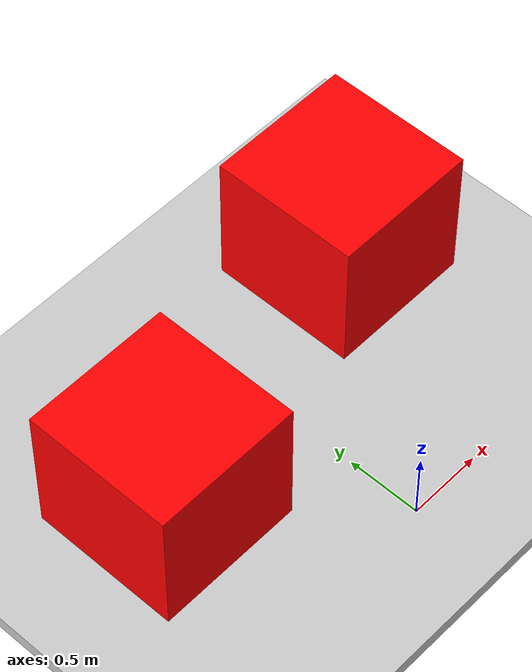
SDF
<?xml version="1.0" ?>
<!--
SPDX-FileCopyrightText: Alliander N. V.

SPDX-License-Identifier: Apache-2.0
-->
<!-- from https://github.com/gazebosim/gz-sim/blob/e647570f25f962d63af75cf669ff72731d57bd5e/examples/worlds/thermal_camera.sdf -->

<!--
  Demo world consisting of a thermal camera sensor and several models with
  different temperatures specified via the thermal system plugin.
-->

<sdf version="1.6">
  <world name="thermal_camera">
    <physics name="1ms" type="ignored">
      <max_step_size>0.001</max_step_size>
      <real_time_factor>1.0</real_time_factor>
    </physics>
    <plugin
      filename="ignition-gazebo-physics-system"
      name="ignition::gazebo::systems::Physics">
    </plugin>
    <plugin
      filename="ignition-gazebo-sensors-system"
      name="ignition::gazebo::systems::Sensors">
      <render_engine>ogre2</render_engine>
    </plugin>
    <plugin
      filename="ignition-gazebo-scene-broadcaster-system"
      name="ignition::gazebo::systems::SceneBroadcaster">
    </plugin>
    <plugin
      filename="ignition-gazebo-user-commands-system"
      name="ignition::gazebo::systems::UserCommands">
    </plugin>

    <light type="directional" name="sun">
      <cast_shadows>true</cast_shadows>
      <pose>0 0 10 0 0 0</pose>
      <diffuse>0.8 0.8 0.8 1</diffuse>
      <specular>0.2 0.2 0.2 1</specular>
      <attenuation>
        <range>1000</range>
        <constant>0.9</constant>
        <linear>0.01</linear>
        <quadratic>0.001</quadratic>
      </attenuation>
      <direction>-0.5 0.1 -0.9</direction>
    </light>

    <atmosphere type="adiabatic">
      <temperature>300</temperature>
    </atmosphere>

    <model name="ground_plane">
      <static>true</static>
      <link name="link">
        <collision name="collision">
          <geometry>
            <box>
              <size>20 20 0.1</size>
            </box>
          </geometry>
        </collision>
        <visual name="visual">
          <geometry>
            <box>
              <size>20 20 0.1</size>
            </box>
          </geometry>
          <material>
            <ambient>0.8 0.8 0.8 1</ambient>
            <diffuse>0.8 0.8 0.8 1</diffuse>
            <specular>0.8 0.8 0.8 1</specular>
          </material>
          <plugin
            filename="ignition-gazebo-thermal-system"
            name="ignition::gazebo::systems::Thermal">
            <temperature>288.0</temperature>
	  </plugin>
        </visual>
      </link>
    </model>

    <model name="hotbox">
      <pose>-1 1 0.5 0 0 0</pose>
      <link name="hotbox_link">
        <inertial>
          <inertia>
            <ixx>1</ixx>
            <ixy>0</ixy>
            <ixz>0</ixz>
            <iyy>1</iyy>
            <iyz>0</iyz>
            <izz>1</izz>
          </inertia>
          <mass>1.0</mass>
        </inertial>
        <collision name="hotbox_collision">
          <geometry>
            <box>
              <size>1 1 1</size>
            </box>
          </geometry>
        </collision>

        <visual name="hotbox_visual">
          <geometry>
            <box>
              <size>1 1 1</size>
            </box>
          </geometry>
          <material>
            <ambient>1 0 0 1</ambient>
            <diffuse>1 0 0 1</diffuse>
            <specular>1 0 0 1</specular>
          </material>
          <plugin
            filename="ignition-gazebo-thermal-system"
            name="ignition::gazebo::systems::Thermal">
            <temperature>373.0</temperature>
          </plugin>
        </visual>
      </link>
    </model>

    <model name="coldbox">
      <pose>1 1.5 0.5 0 0 0</pose>
      <link name="coldbox_link">
        <inertial>
          <inertia>
            <ixx>1</ixx>
            <ixy>0</ixy>
            <ixz>0</ixz>
            <iyy>1</iyy>
            <iyz>0</iyz>
            <izz>1</izz>
          </inertia>
          <mass>1.0</mass>
        </inertial>
        <collision name="coldbox_collision">
          <geometry>
            <box>
              <size>1 1 1</size>
            </box>
          </geometry>
        </collision>

        <visual name="coldbox_visual">
          <geometry>
            <box>
              <size>1 1 1</size>
            </box>
          </geometry>
          <material>
            <ambient>1 0 0 1</ambient>
            <diffuse>1 0 0 1</diffuse>
            <specular>1 0 0 1</specular>
          </material>
          <plugin
            filename="ignition-gazebo-thermal-system"
            name="ignition::gazebo::systems::Thermal">
            <temperature>298.0</temperature>
          </plugin>
        </visual>
      </link>
    </model>
  </world>
</sdf>
